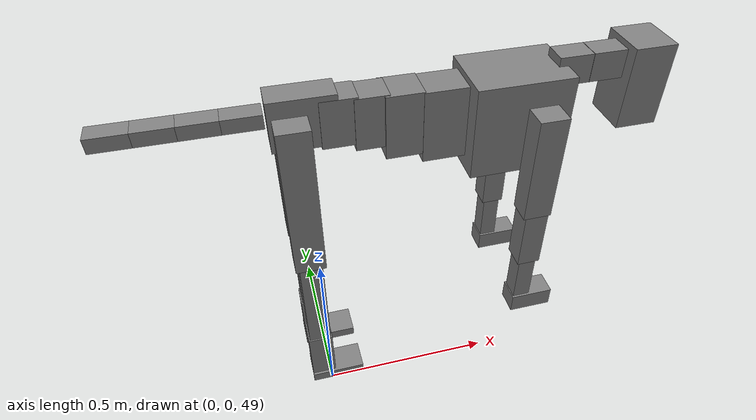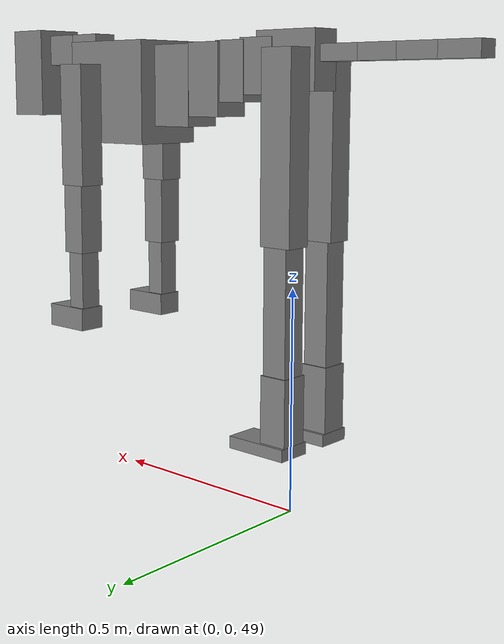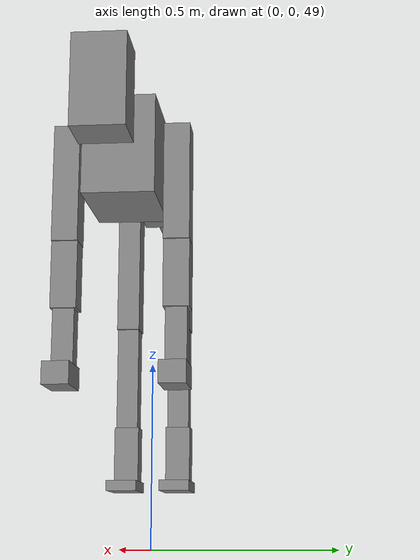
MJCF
<mujoco model="dog">

    <default>
        <joint armature="0.02" stiffness="1" damping="0.2" limited="true"/>
        <geom condim="3" friction="1 0.05 0.05" margin="0.01"/>
        <motor ctrllimited="true" ctrlrange="-1.0 1.0" forcelimited="true" gear="50"/>
    </default>

    <compiler inertiafromgeom="true" angle="radian"/>

    <option timestep="0.016" iterations="50" tolerance="1e-10" solver="Newton" jacobian="dense" cone="pyramidal"/>

    <size nconmax="20000" njmax="60000" nstack="5000000"/>
    <visual>
        <map force="0.1" zfar="30"/>
        <rgba haze="0.15 0.25 0.35 1"/>
        <quality shadowsize="2048"/>
        <global offwidth="800" offheight="800"/>
    </visual>

    <asset>
        <texture type="skybox" builtin="gradient" rgb1="0.3 0.5 0.7" rgb2="0 0 0" width="512" height="512"/>
        <texture name="texplane" type="2d" builtin="checker" rgb1=".2 .3 .4" rgb2=".1 0.15 0.2" width="512" height="512"
                 mark="cross" markrgb=".8 .8 .8"/>
        <texture name="texgeom" type="cube" builtin="flat" mark="cross" width="127" height="1278" rgb1="0.8 0.6 0.4"
                 rgb2="0.8 0.6 0.4" markrgb="1 1 1" random="0.01"/>

        <material name="matplane" reflectance="0.3" texture="texplane" texrepeat="1 1" texuniform="true"/>
        <material name="matgeom" texture="texgeom" texuniform="true" rgba="0.8 0.6 .4 1"/>
    </asset>

    <worldbody>
        <geom name="floor" pos="0 0 0" size="0 0 .25" type="plane" material="matplane" condim="3"/>

        <light directional="false" diffuse=".2 .2 .2" specular="0 0 0" pos="0 0 5" dir="0 0 -1" castshadow="false"/>
        <light mode="targetbodycom" target="torso" directional="false" diffuse=".8 .8 .8" specular="0.3 0.3 0.3"
               pos="0 0 4.0" dir="0 0 -1"/>

        <body name="root" pos="0 0 50">
            <freejoint name="root_1"/>
            <geom type="box" pos="0 0 -0.02" size="0.0774  0.0358  0.063" density="2030"/>

            <body name="spine1" pos="0.054 0 0">
                <joint name="spine1_y" axis="0 1 0" range="0 0.7" limited="true"/>
                <geom type="box" pos="0.02375 0 -0.03" size="0.04375  0.0375  0.05985" density="2030"/>

                <body name="spine2" pos="0.0612 0 0">
                    <joint name="spine2_y" axis="0 1 0" range="-0.15 0.15" limited="true"/>
                    <geom type="box" pos="0.03555  0  -0.04" size="0.04055  0.039  0.06615" density="2030"/>

                    <body name="spine3" pos="0.0730 0 0">
                        <joint name="spine3_y" axis="0 1 0" range="-0.15 0.15" limited="true"/>
                        <geom type="box" pos="0.03555  0  -0.057" size="0.04555  0.0445  0.081" density="2030"/>

                        <body name="spine4" pos="0.0780 0 0">
                            <joint name="spine4_y" axis="0 1 0" range="-0.15 0.15" limited="true"/>
                            <geom type="box" pos="0.05265  0  -0.07" size="0.05265  0.045  0.09135" density="2030"/>

                            <body name="torso" pos="0.1082 0 0">
                                <joint name="torso_y" axis="0 1 0" range="-0.15 0.15" limited="true"/>
                                <geom type="box" pos="0.11925  0  -0.085" size="0.11925  0.085  0.11745"
                                      density="2030"/>

                                <body name="neck1" pos="0.2160  0   0.0180">
                                    <joint name="neck1_y" axis="0 1 0" range="-1.2  -1" limited="true"/>
                                    <geom type="box" pos="0.0423  0  0" size="0.0423  0.03  0.036" density="2325"/>

                                    <body name="neck2" pos="0.0853  0  0">
                                        <joint name="neck2_y" axis="0 1 0" range="0.1  0" limited="true"/>
                                        <geom type="box" pos="0.0423  0  0" size="0.0423  0.03  0.036" density="2325"/>

                                        <body name="head" pos="0.0853  0  0">
                                            <joint name="head_y" axis="0 1 0" range="-0.3  -0.2" limited="true"/>
                                            <geom type="box" pos="0.0531  0  -0.055" size="0.0531  0.06  0.1044"
                                                  density="4030"/>

                                        </body>
                                    </body>
                                </body>

                                <body name="front_shoulder" pos="0.156  0   -0.0480">
                                    <joint name="front_shoulder_y" axis="0 1 0" range="-1 1.5" limited="true"/>
                                    <geom type="box" pos="0 0.13 -0.1126" size="0.0357  0.0305  0.1393" density="1158"/>
                                    <geom type="box" pos="0 -0.13 -0.1126" size="0.0357  0.0305  0.1393"
                                          density="1158"/>

                                    <body name="front_elbow" pos="0  0  -0.2252">
                                        <joint name="front_elbow_y" axis="0 1 0" range="-2 0" limited="true"/>
                                        <geom type="box" pos="0 0.13 -0.0923" size="0.0298  0.0304  0.0923"
                                              density="1081"/>
                                        <geom type="box" pos="0 -0.13 -0.0923" size="0.0298  0.0304  0.0923"
                                              density="1081"/>

                                        <body name="front_wrist" pos="0  0  -0.1846">
                                            <joint name="front_wrist_y" axis="0 1 0" range="-0.2 0" limited="true"/>
                                            <geom type="box" pos="0 0.13 -0.0735" size="0.0227  0.0252  0.0867"
                                                  density="1664"/>
                                            <geom type="box" pos="0 -0.13 -0.0735" size="0.0227  0.0252  0.0867"
                                                  density="1664"/>

                                            <body name="front_finger_end" pos="0  0  -0.1471">
                                                <joint name="front_finger_y" axis="0 1 0" range="-0.4 1"
                                                       limited="true"/>
                                                <geom type="box" pos="0.0311  0.13  -0.0112"
                                                      size="0.0569  0.0311  0.0262" density="1515"/>
                                                <geom type="box" pos="0.0311  -0.13  -0.0112"
                                                      size="0.0569  0.0311  0.0262" density="1515"/>

                                            </body>

                                        </body>
                                    </body>
                                </body>

                            </body>
                        </body>
                    </body>
                </body>
            </body>

            <body name="back_hip" pos="-0.03 0 -0.018">
                <joint name="back_hip_y" axis="0 1 0" range="-1.5 0.3" limited="true"/>
                <geom type="box" pos="0 0.07 -0.1795" size="0.0384  0.0301  0.2023" density="1154"/>
                <geom type="box" pos="0 -0.07 -0.1795" size="0.0384  0.0301  0.2023" density="1154"/>

                <body name="back_knee" pos="0  0  -0.3589">
                    <joint name="back_knee_y" axis="0 1 0" range="0 2.8" limited="true"/>
                    <geom type="box" pos="0 0.07 -0.1531" size="0.0291  0.0287  0.1686" density="1227"/>
                    <geom type="box" pos="0 -0.07 -0.1531" size="0.0291  0.0287  0.1686" density="1227"/>

                    <body name="back_ankle" pos="0  0  -0.3062">
                        <joint name="back_ankle_y" axis="0 1 0" range="-2.2 0" limited="true"/>
                        <geom type="box" pos="0 0.07 -0.0754" size="0.0324  0.0324  0.0867" density="1284"/>
                        <geom type="box" pos="0 -0.07 -0.0754" size="0.0324  0.0324  0.0867" density="1284"/>

                        <body name="back_toe_end" pos="0  0  -0.1509">
                            <joint name="back_toe_y" axis="0 1 0" range="-0.4 1" limited="true"/>
                            <geom type="box" pos="0.0397  0.07  0.0015" size="0.0728  0.0397  0.0135" density="1515"/>
                            <geom type="box" pos="0.0397  -0.07  0.0015" size="0.0728  0.0397  0.0135" density="1515"/>

                        </body>
                    </body>
                </body>
            </body>

            <body name="tail1" pos="-0.074 0 -0.006">
                <joint name="tail1_y" axis="0 1 0" range="-0.2 0.2" limited="true"/>
                <geom type="box" pos="-0.0536  0  0" size="0.045  0.025  0.0175" density="1587"/>

                <body name="tail2" pos="-0.09 0 0">
                    <joint name="tail2_y" axis="0 1 0" range="-0.2 0.2" limited="true"/>
                    <geom type="box" pos="-0.0536  0  0" size="0.045  0.025  0.0175" density="1587"/>

                    <body name="tail3" pos="-0.09 0 0">
                        <joint name="tail3_y" axis="0 1 0" range="-0.2 0.2" limited="true"/>
                        <geom type="box" pos="-0.0536  0  0" size="0.045  0.025  0.0175" density="1587"/>

                        <body name="tail4" pos="-0.09 0 0">
                            <joint name="tail4_y" axis="0 1 0" range="-0.2 0.2" limited="true"/>
                            <geom type="box" pos="-0.0536  0  0" size="0.045  0.025  0.0175" density="1587"/>

                        </body>
                    </body>
                </body>
            </body>
        </body>
    </worldbody>

    <actuator>
        <motor joint="spine1_y" forcerange="-150 150     "/>
        <motor joint="spine2_y" forcerange="-150 150     "/>
        <motor joint="spine3_y" forcerange="-150 150     "/>
        <motor joint="spine4_y" forcerange="-150 150     "/>
        <motor joint="torso_y" forcerange="-150 150     "/>
        <motor joint="neck1_y" forcerange="-100 100       "/>
        <motor joint="neck2_y" forcerange="-100 100       "/>
        <motor joint="head_y" forcerange="-150 150       "/>
        <motor joint="front_shoulder_y" forcerange="-173.73 129.55"/>
        <motor joint="front_elbow_y" forcerange="-191.66 129.64"/>
        <motor joint="front_wrist_y" forcerange="-92.51 108.94"/>
        <motor joint="front_finger_y" forcerange="-46.22 79.39"/>
        <motor joint="back_hip_y" forcerange="-219.49 381.87"/>
        <motor joint="back_knee_y" forcerange="-296.33 321.15"/>
        <motor joint="back_angle_y" forcerange="-205.47 212.42"/>
        <motor joint="back_toe_y" forcerange="-108.94 128.92"/>
        <motor joint="tail1_y" forcerange="-50 50     "/>
        <motor joint="tail2_y" forcerange="-50 50     "/>
        <motor joint="tail3_y" forcerange="-50 50     "/>
        <motor joint="tail4_y" forcerange="-50 50     "/>
    </actuator>
</mujoco>
